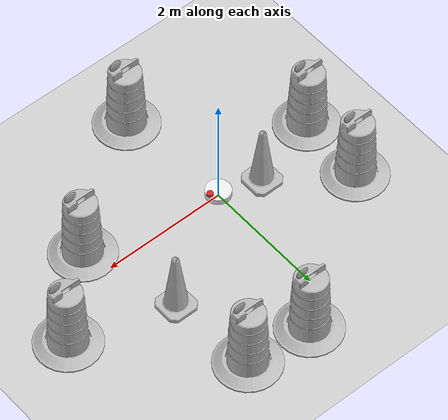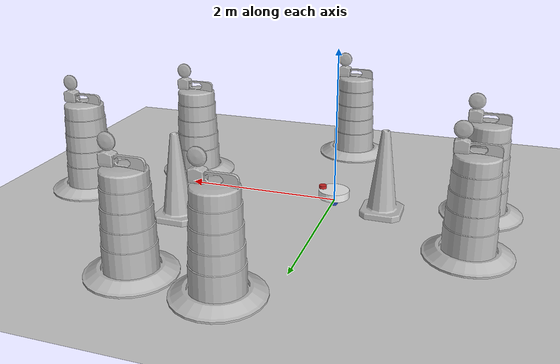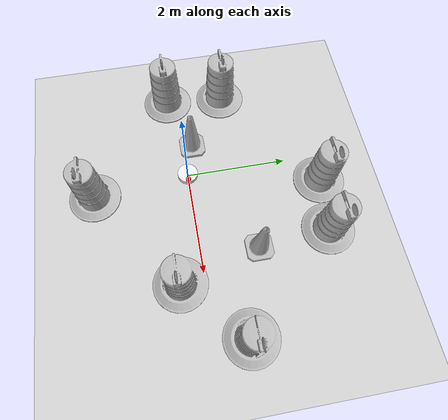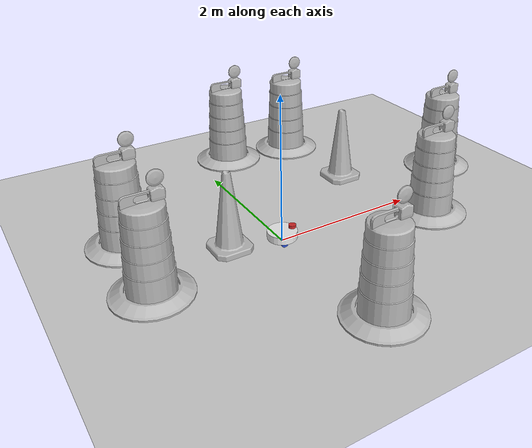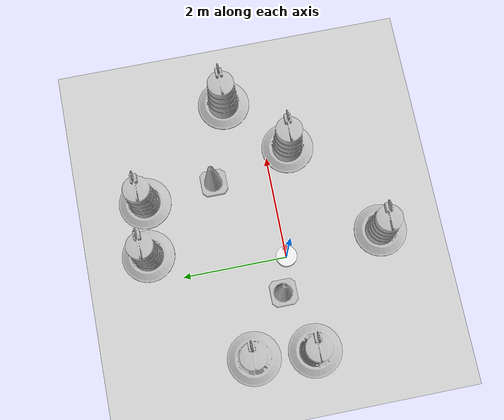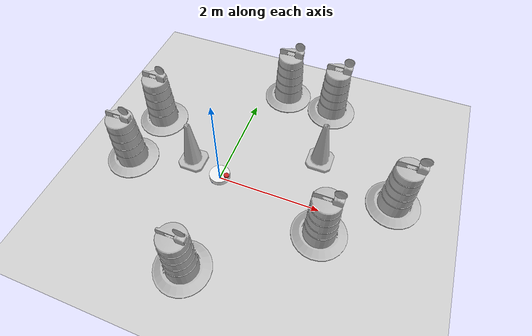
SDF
<sdf version="1.7">
 <world name="default">
  <light name="sun" type="directional">
   <pose>0 0 10 0 -0 0</pose>
   <diffuse>0.8 0.8 0.8 1</diffuse>
   <specular>0.2 0.2 0.2 1</specular>
   <attenuation>
    <range>1000</range>
    <constant>0.9</constant>
    <linear>0.01</linear>
    <quadratic>0.001</quadratic>
   </attenuation>
   <direction>-0.5 0.1 -0.9</direction>
   <spot><inner_angle>0</inner_angle><outer_angle>0</outer_angle><falloff>0</falloff></spot>
  </light>
  <model name="ground_plane">
   <static>1</static>
   <link name="link">
    <collision name="collision">
     <geometry><plane><normal>0 0 1</normal><size>100 100</size></plane></geometry>
     <surface><friction><ode><mu>100</mu><mu2>50</mu2></ode></friction></surface>
    </collision>
    <visual name="visual">
     <cast_shadows>0</cast_shadows>
     <geometry><plane><normal>0 0 1</normal><size>100 100</size></plane></geometry>
     <material>
      <script><uri>file://media/materials/scripts/gazebo.material</uri><name>Gazebo/Grey</name></script>
     </material>
    </visual>
   </link>
  </model>
  <gravity>0 0 -9.8</gravity>
  <magnetic_field>6e-06 2.3e-05 -4.2e-05</magnetic_field>
  <atmosphere type="adiabatic"/>
  <physics type="ode">
   <max_step_size>0.001</max_step_size>
   <real_time_factor>1</real_time_factor>
   <real_time_update_rate>1000</real_time_update_rate>
  </physics>
  <scene><ambient>0.4 0.4 0.4 1</ambient><background>0.7 0.7 0.7 1</background><shadows>1</shadows></scene>
  <spherical_coordinates>
   <surface_model>EARTH_WGS84</surface_model>
   <latitude_deg>0</latitude_deg>
   <longitude_deg>0</longitude_deg>
   <elevation>0</elevation>
   <heading_deg>0</heading_deg>
  </spherical_coordinates>
  <model name="ute_datn">
   <link name="base_link">
    <inertial>
     <pose>0.058491 0 0.049434 0 -0 0</pose>
     <mass>5.3</mass>
     <inertia>
      <ixx>0.0554308</ixx>
      <ixy>0</ixy>
      <ixz>0.000424528</ixz>
      <iyy>0.0617987</iyy>
      <iyz>0</iyz>
      <izz>0.106693</izz>
     </inertia>
    </inertial>
    <collision name="base_link_fixed_joint_lump__chassis_collision">
     <pose>0.05 0 0.05 0 -0 0</pose>
     <geometry><cylinder><length>0.1</length><radius>0.2</radius></cylinder></geometry>
    </collision>
    <collision name="base_link_fixed_joint_lump__caster_wheel_collision_1">
     <pose>0.2 0 0 0 -0 0</pose>
     <geometry><sphere><radius>0.05</radius></sphere></geometry>
     <surface><friction><ode><mu>0.001</mu><mu2>0.001</mu2></ode></friction></surface>
    </collision>
    <collision name="base_link_fixed_joint_lump__laser_frame_collision_2">
     <pose>0.2 0 0.12 0 -0 0</pose>
     <geometry><cylinder><length>0.04</length><radius>0.05</radius></cylinder></geometry>
    </collision>
    <visual name="base_link_fixed_joint_lump__chassis_visual">
     <pose>0.05 0 0.05 0 -0 0</pose>
     <geometry><cylinder><length>0.1</length><radius>0.2</radius></cylinder></geometry>
     <material>
      <script><name>Gazebo/White</name><uri>file://media/materials/scripts/gazebo.material</uri></script>
     </material>
    </visual>
    <visual name="base_link_fixed_joint_lump__caster_wheel_visual_1">
     <pose>0.2 0 0 0 -0 0</pose>
     <geometry><sphere><radius>0.05</radius></sphere></geometry>
     <material>
      <script><name>Gazebo/Black</name><uri>file://media/materials/scripts/gazebo.material</uri></script>
     </material>
    </visual>
    <visual name="base_link_fixed_joint_lump__laser_frame_visual_2">
     <pose>0.2 0 0.12 0 -0 0</pose>
     <geometry><cylinder><length>0.04</length><radius>0.05</radius></cylinder></geometry>
     <material>
      <script><name>Gazebo/Red</name><uri>file://media/materials/scripts/gazebo.material</uri></script>
     </material>
    </visual>
    <sensor name="laser" type="ray">
     <visualize>1</visualize>
     <update_rate>10</update_rate>
     <ray>
      <scan>
       <horizontal>
        <samples>360</samples>
        <min_angle>-3.14</min_angle>
        <max_angle>3.14</max_angle>
        <resolution>1</resolution>
       </horizontal>
       <vertical><samples>1</samples><min_angle>0</min_angle><max_angle>0</max_angle></vertical>
      </scan>
      <range><min>0.3</min><max>12</max></range>
     </ray>
     <plugin name="laser_controller" filename="libgazebo_ros_ray_sensor.so">
      <ros><argument>~/out:=scan</argument></ros>
      <output_type>sensor_msgs/LaserScan</output_type>
      <frame_name>laser_frame</frame_name>
     </plugin>
     <pose>0.2 0 0.12 0 -0 0</pose>
    </sensor>
   </link>
   <joint name="left_wheel_joint" type="revolute">
    <pose relative_to="base_link">0 0.15 0 -1.5708 0 0</pose>
    <parent>base_link</parent>
    <child>left_wheel</child>
    <axis>
     <xyz>0 0 1</xyz>
     <limit><lower>-1e+16</lower><upper>1e+16</upper></limit>
     <dynamics><spring_reference>0</spring_reference><spring_stiffness>0</spring_stiffness></dynamics>
    </axis>
   </joint>
   <link name="left_wheel">
    <pose relative_to="left_wheel_joint">0 0 0 0 -0 0</pose>
    <inertial>
     <mass>0.1</mass>
     <inertia>
      <ixx>7.58333e-05</ixx>
      <ixy>0</ixy>
      <ixz>0</ixz>
      <iyy>7.58333e-05</iyy>
      <iyz>0</iyz>
      <izz>0.000125</izz>
     </inertia>
    </inertial>
    <collision name="left_wheel_collision">
     <geometry><cylinder><length>0.04</length><radius>0.05</radius></cylinder></geometry>
    </collision>
    <visual name="left_wheel_visual">
     <geometry><cylinder><length>0.04</length><radius>0.05</radius></cylinder></geometry>
     <material>
      <script><name>Gazebo/Blue</name><uri>file://media/materials/scripts/gazebo.material</uri></script>
     </material>
    </visual>
   </link>
   <joint name="right_wheel_joint" type="revolute">
    <pose relative_to="base_link">0 -0.15 0 1.5708 -0 0</pose>
    <parent>base_link</parent>
    <child>right_wheel</child>
    <axis>
     <xyz>0 0 -1</xyz>
     <limit><lower>-1e+16</lower><upper>1e+16</upper></limit>
     <dynamics><spring_reference>0</spring_reference><spring_stiffness>0</spring_stiffness></dynamics>
    </axis>
   </joint>
   <link name="right_wheel">
    <pose relative_to="right_wheel_joint">0 0 0 0 -0 0</pose>
    <inertial>
     <mass>0.1</mass>
     <inertia>
      <ixx>7.58333e-05</ixx>
      <ixy>0</ixy>
      <ixz>0</ixz>
      <iyy>7.58333e-05</iyy>
      <iyz>0</iyz>
      <izz>0.000125</izz>
     </inertia>
    </inertial>
    <collision name="right_wheel_collision">
     <geometry><cylinder><length>0.04</length><radius>0.05</radius></cylinder></geometry>
    </collision>
    <visual name="right_wheel_visual">
     <geometry><cylinder><length>0.04</length><radius>0.05</radius></cylinder></geometry>
     <material>
      <script><name>Gazebo/Blue</name><uri>file://media/materials/scripts/gazebo.material</uri></script>
     </material>
    </visual>
   </link>
   <static>0</static>
   <plugin name="diff_drive" filename="libgazebo_ros_diff_drive.so">
    <left_joint>left_wheel_joint</left_joint>
    <right_joint>right_wheel_joint</right_joint>
    <wheel_separation>0.3</wheel_separation>
    <wheel_diameter>0.05</wheel_diameter>
    <max_wheel_torque>200</max_wheel_torque>
    <max_wheel_acceleration>10.0</max_wheel_acceleration>
    <odometry_frame>odom</odometry_frame>
    <robot_base_frame>base_link</robot_base_frame>
    <publish_odom>1</publish_odom>
    <publish_odom_tf>1</publish_odom_tf>
    <publish_wheel_tf>1</publish_wheel_tf>
   </plugin>
   <pose>-0.043648 0.005412 0.049997 1e-06 -1.5e-05 -0.031857</pose>
  </model>
  <model name="Construction Barrel">
   <link name="link">
    <inertial>
     <pose>0 0 0.4 0 -0 0</pose>
     <mass>500</mass>
     <inertia><ixx>51.2096</ixx><iyy>51.2096</iyy><izz>25</izz><ixy>0</ixy><ixz>0</ixz><iyz>0</iyz></inertia>
    </inertial>
    <collision name="collision">
     <geometry><mesh><uri>model://construction_barrel/meshes/construction_barrel.dae</uri></mesh></geometry>
    </collision>
    <visual name="visual">
     <geometry><mesh><uri>model://construction_barrel/meshes/construction_barrel.dae</uri></mesh></geometry>
    </visual>
   </link>
   <pose>-1.83302 -0.168632 -1e-06 3e-06 7e-06 -1.5e-05</pose>
  </model>
  <model name="Construction Barrel_0">
   <link name="link">
    <inertial>
     <pose>0 0 0.4 0 -0 0</pose>
     <mass>500</mass>
     <inertia><ixx>51.2096</ixx><iyy>51.2096</iyy><izz>25</izz><ixy>0</ixy><ixz>0</ixz><iyz>0</iyz></inertia>
    </inertial>
    <collision name="collision">
     <geometry><mesh><uri>model://construction_barrel/meshes/construction_barrel.dae</uri></mesh></geometry>
    </collision>
    <visual name="visual">
     <geometry><mesh><uri>model://construction_barrel/meshes/construction_barrel.dae</uri></mesh></geometry>
    </visual>
   </link>
   <pose>-1.75771 0.977044 0 0 0 -1.5e-05</pose>
  </model>
  <model name="Construction Barrel_1">
   <link name="link">
    <inertial>
     <pose>0 0 0.4 0 -0 0</pose>
     <mass>500</mass>
     <inertia><ixx>51.2096</ixx><iyy>51.2096</iyy><izz>25</izz><ixy>0</ixy><ixz>0</ixz><iyz>0</iyz></inertia>
    </inertial>
    <collision name="collision">
     <geometry><mesh><uri>model://construction_barrel/meshes/construction_barrel.dae</uri></mesh></geometry>
    </collision>
    <visual name="visual">
     <geometry><mesh><uri>model://construction_barrel/meshes/construction_barrel.dae</uri></mesh></geometry>
    </visual>
   </link>
   <pose>0.537445 2.59131 -0 1e-06 -1e-06 -1.2e-05</pose>
  </model>
  <model name="Construction Cone">
   <link name="link">
    <collision name="collision">
     <geometry>
      <mesh><scale>10 10 10</scale><uri>model://construction_cone/meshes/construction_cone.dae</uri></mesh>
     </geometry>
    </collision>
    <visual name="visual">
     <geometry>
      <mesh><scale>10 10 10</scale><uri>model://construction_cone/meshes/construction_cone.dae</uri></mesh>
     </geometry>
    </visual>
    <inertial>
     <inertia><ixx>1</ixx><ixy>0</ixy><ixz>0</ixz><iyy>1</iyy><iyz>0</iyz><izz>1</izz></inertia>
     <mass>1</mass>
    </inertial>
   </link>
   <pose>-0.657606 0.193677 -4e-06 4e-06 -1e-06 0</pose>
  </model>
  <model name="Construction Barrel_2">
   <link name="link">
    <inertial>
     <pose>0 0 0.4 0 -0 0</pose>
     <mass>500</mass>
     <inertia><ixx>51.2096</ixx><iyy>51.2096</iyy><izz>25</izz><ixy>0</ixy><ixz>0</ixz><iyz>0</iyz></inertia>
    </inertial>
    <collision name="collision">
     <geometry><mesh><uri>model://construction_barrel/meshes/construction_barrel.dae</uri></mesh></geometry>
    </collision>
    <visual name="visual">
     <geometry><mesh><uri>model://construction_barrel/meshes/construction_barrel.dae</uri></mesh></geometry>
    </visual>
   </link>
   <pose>1.57065 2.4829 -2e-06 -0 7e-06 -8e-06</pose>
  </model>
  <model name="Construction Barrel_3">
   <link name="link">
    <inertial>
     <pose>0 0 0.4 0 -0 0</pose>
     <mass>500</mass>
     <inertia><ixx>51.2096</ixx><iyy>51.2096</iyy><izz>25</izz><ixy>0</ixy><ixz>0</ixz><iyz>0</iyz></inertia>
    </inertial>
    <collision name="collision">
     <geometry><mesh><uri>model://construction_barrel/meshes/construction_barrel.dae</uri></mesh></geometry>
    </collision>
    <visual name="visual">
     <geometry><mesh><uri>model://construction_barrel/meshes/construction_barrel.dae</uri></mesh></geometry>
    </visual>
   </link>
   <pose>0.166668 -1.87814 -1e-06 3e-06 1e-05 -7e-06</pose>
  </model>
  <model name="Construction Barrel_4">
   <link name="link">
    <inertial>
     <pose>0 0 0.4 0 -0 0</pose>
     <mass>500</mass>
     <inertia><ixx>51.2096</ixx><iyy>51.2096</iyy><izz>25</izz><ixy>0</ixy><ixz>0</ixz><iyz>0</iyz></inertia>
    </inertial>
    <collision name="collision">
     <geometry><mesh><uri>model://construction_barrel/meshes/construction_barrel.dae</uri></mesh></geometry>
    </collision>
    <visual name="visual">
     <geometry><mesh><uri>model://construction_barrel/meshes/construction_barrel.dae</uri></mesh></geometry>
    </visual>
   </link>
   <pose>3.25673 0.617191 1e-06 2e-06 3e-06 -6e-06</pose>
  </model>
  <model name="Construction Barrel_5">
   <link name="link">
    <inertial>
     <pose>0 0 0.4 0 -0 0</pose>
     <mass>500</mass>
     <inertia><ixx>51.2096</ixx><iyy>51.2096</iyy><izz>25</izz><ixy>0</ixy><ixz>0</ixz><iyz>0</iyz></inertia>
    </inertial>
    <collision name="collision">
     <geometry><mesh><uri>model://construction_barrel/meshes/construction_barrel.dae</uri></mesh></geometry>
    </collision>
    <visual name="visual">
     <geometry><mesh><uri>model://construction_barrel/meshes/construction_barrel.dae</uri></mesh></geometry>
    </visual>
   </link>
   <pose>2.13523 -0.452007 0 0 0 -3e-06</pose>
  </model>
  <model name="Construction Cone_0">
   <link name="link">
    <collision name="collision">
     <geometry>
      <mesh><scale>10 10 10</scale><uri>model://construction_cone/meshes/construction_cone.dae</uri></mesh>
     </geometry>
    </collision>
    <visual name="visual">
     <geometry>
      <mesh><scale>10 10 10</scale><uri>model://construction_cone/meshes/construction_cone.dae</uri></mesh>
     </geometry>
    </visual>
    <inertial>
     <inertia><ixx>1</ixx><ixy>0</ixy><ixz>0</ixz><iyy>1</iyy><iyz>0</iyz><izz>1</izz></inertia>
     <mass>1</mass>
    </inertial>
   </link>
   <pose>1.70865 1.09919 -0 0 -1e-06 0</pose>
  </model>
 </world>
</sdf>
